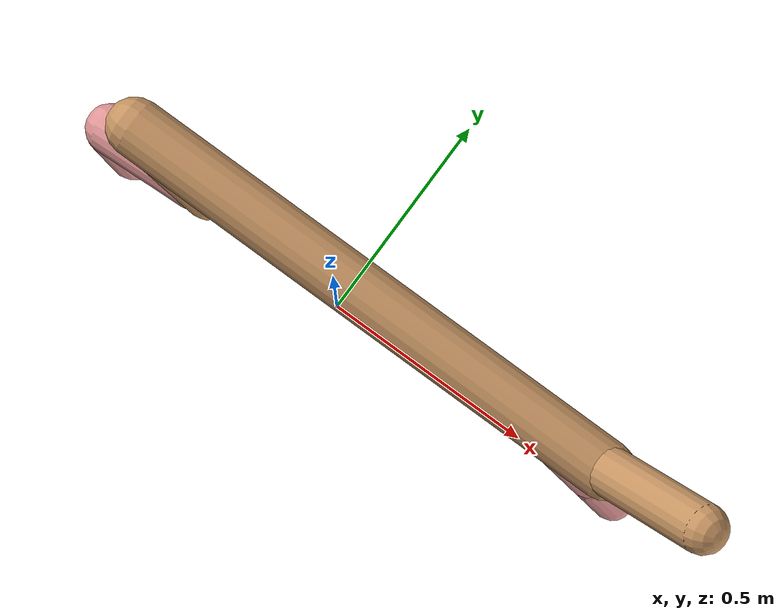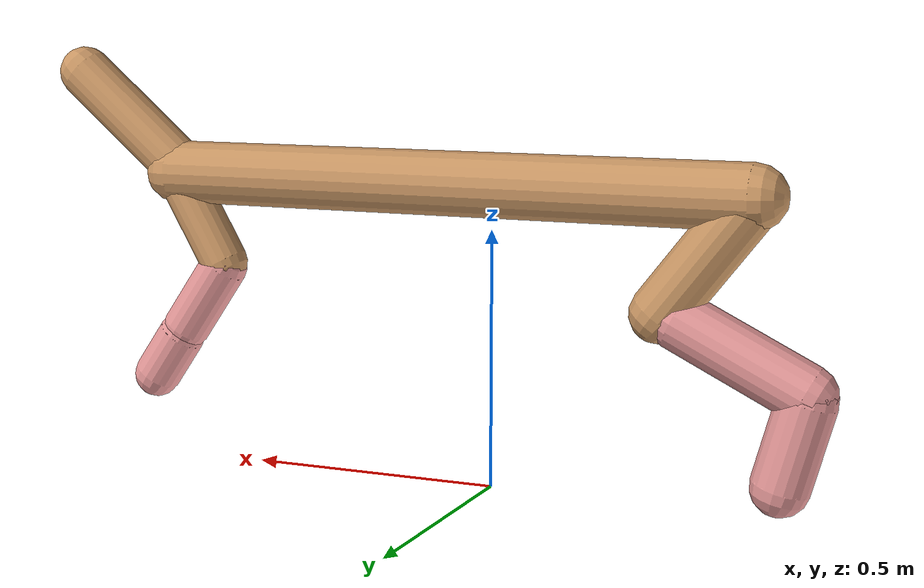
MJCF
<mujoco model="cheetah">
  <compiler angle="radian" coordinate="local" inertiafromgeom="true" settotalmass="14" />
  <default>
    <joint armature=".1" damping=".01" limited="true" solimplimit="0 .8 .03" solreflimit=".02 1" stiffness="8" />
    <geom conaffinity="0" condim="3" contype="1" friction="0.8 .1 .1" rgba="0.8 0.6 .4 1" solimp="0.0 0.8 0.01" solref="0.02 1" />
    <motor ctrllimited="true" ctrlrange="-1 1" />
  </default>
  <size nstack="300000" nuser_geom="1" />
  <option gravity="0 0 -9.81" timestep="0.01" />
  <worldbody>
    <body name="torso" pos="0.0 0.0 0.5846814106937152">
      <joint armature="0" axis="1 0 0" damping="0" limited="false" name="ignorex" pos="0 0 0" stiffness="0" type="slide" />
      <joint armature="0" axis="0 0 1" damping="0" limited="false" name="ignorez" pos="0 0 0" stiffness="0" type="slide" />
      <joint armature="0" axis="0 1 0" damping="0" limited="false" name="ignorey" pos="0 0 0" stiffness="0" type="hinge" />
      <geom fromto="-0.5 0.0 0.0 0.6848427228525475 0.0 0.0" name="torso" size="0.06273852930352905" type="capsule" />
      <geom axisangle="0 1 0 .87" name="head" pos="0.7848427228525475 0.0 0.1" size="0.05278809621253356 0.15" type="capsule" />

      <body name="bthigh" pos="-.5 0 0">
        <joint axis="0 1 0" damping="6" name="bthigh" pos="0 0 0" range="-.52 1.05" stiffness="240" type="hinge" />
        <geom axisangle="0 1 0 -3.8" name="bthigh" pos="0.09136009084764664 0.0 -0.11876811810194063" size="0.056482141206681546 0.13082949538185482" type="capsule" />
        <body name="bshin" pos="0.14272018169529327 0.0 -0.22753623620388125">
          <joint axis="0 1 0" damping="4.5" name="bshin" pos="0 0 0" range="-.785 .785" stiffness="180" type="hinge" />
          <geom axisangle="0 1 0 -2.03" name="bshin" pos="-0.12688846416483562 0.0 -0.06344423208241781" rgba="0.9 0.6 0.6 1" size="0.056482141206681546 0.13534085729157397" type="capsule" />
          <body name="bfoot" pos="-0.25377692832967125 0.0 -0.12688846416483562">
            <joint axis="0 1 0" damping="3" name="bfoot" pos="0 0 0" range="-.4 .785" stiffness="120" type="hinge" />
            <geom axisangle="0 1 0 -.27" name="bfoot" pos="0.02728569809048422 0.0 -0.08822375715923232" rgba="0.9 0.6 0.6 1" size="0.056482141206681546 0.08481360390271968" type="capsule" />
            <inertial mass="10" />
          </body>
        </body>
      </body>
      <body name="fthigh" pos="0.6848427228525475 0.0 0.0">
        <joint axis="0 1 0" damping="4.5" name="fthigh" pos="0 0 0" range="-1.5 0.8" stiffness="180" type="hinge" />
        <geom axisangle="0 1 0 .52" name="fthigh" pos="-0.05391274665993319 0.0 -0.09242185141702831" size="0.04734276785720893 0.10107267628986179" type="capsule" />
        <body name="fshin" pos="-0.10782549331986638 0.0 -0.18484370283405663">
          <joint axis="0 1 0" damping="3" name="fshin" pos="0 0 0" range="-1.2 1.1" stiffness="120" type="hinge" />
          <geom axisangle="0 1 0 -.6" name="fshin" pos="0.05010170283584514 0.0 -0.06937158854193942" rgba="0.9 0.6 0.6 1" size="0.04734276785720893 0.08055416305808533" type="capsule" />
          <body name="ffoot" pos="0.10020340567169028 0.0 -0.13874317708387884">
            <joint axis="0 1 0" damping="1.5" name="ffoot" pos="0 0 0" range="-3.1 -0.3" stiffness="60" type="hinge" />
            <geom axisangle="0 1 0 -.6" name="ffoot" pos="0.03591318807022068 0.0 -0.05586495922034329" rgba="0.9 0.6 0.6 1" size="0.04734276785720893 0.05319614541571673" type="capsule" />
            <inertial mass="10" />
          </body>
        </body>
      </body>
    </body>
  </worldbody>
  <actuator>
    <motor gear="120" joint="bthigh" name="bthigh" />
    <motor gear="90" joint="bshin" name="bshin" />
    <motor gear="60" joint="bfoot" name="bfoot" />
    <motor gear="120" joint="fthigh" name="fthigh" />
    <motor gear="60" joint="fshin" name="fshin" />
    <motor gear="30" joint="ffoot" name="ffoot" />
  </actuator>
</mujoco>
